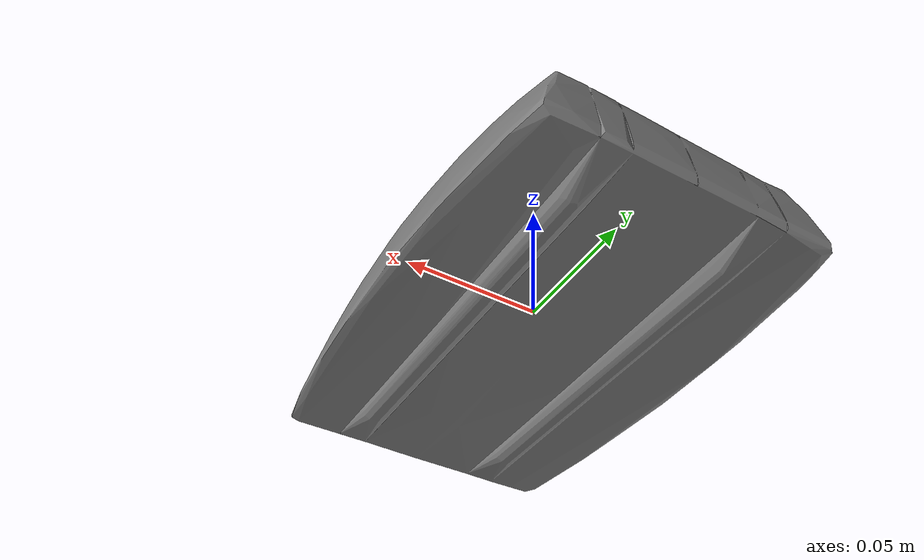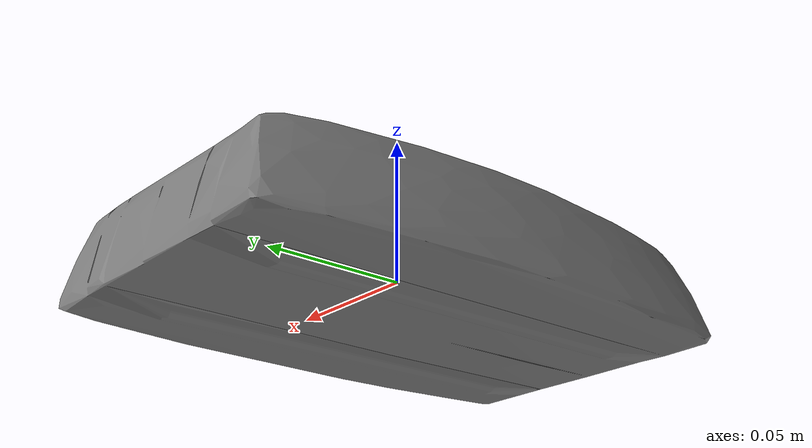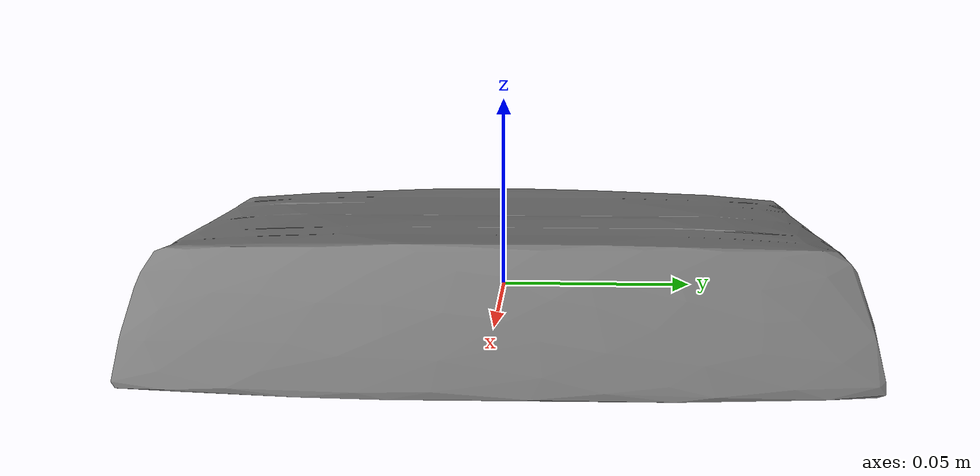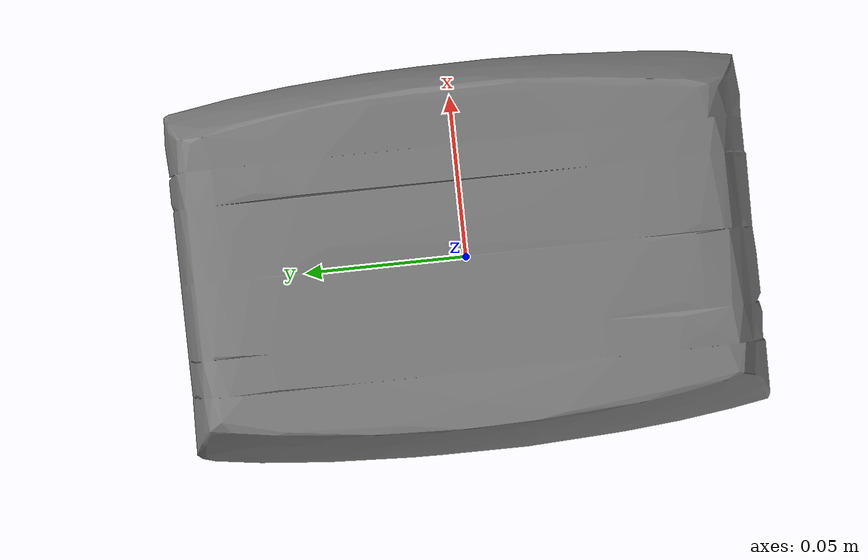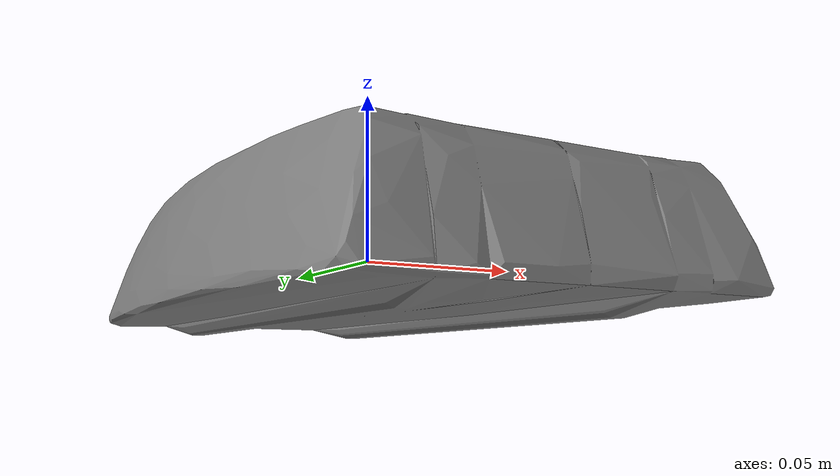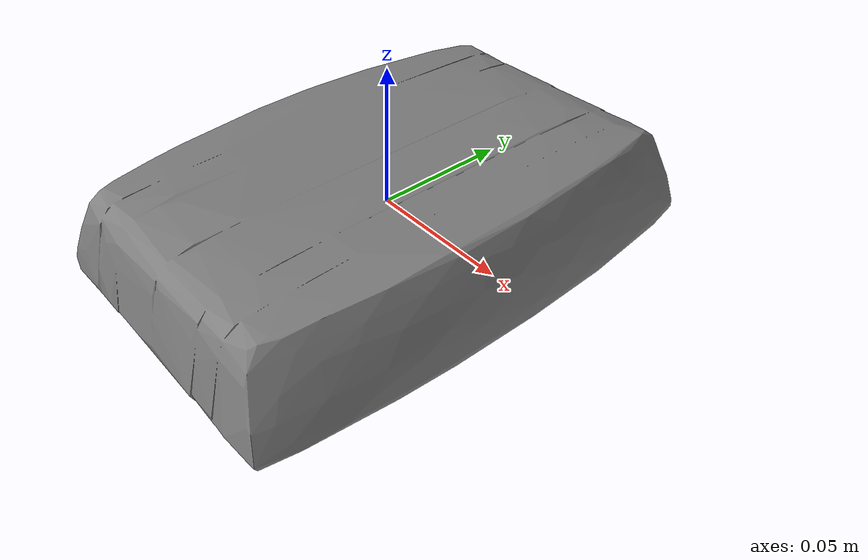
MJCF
<mujoco model="hard_drive_Seagate_3TB_Central_shared_storage_M">
  <default>
    <default class="visual">
      <geom group="2" type="mesh" contype="0" conaffinity="0" />
    </default>
    <default class="collision">
      <geom group="3" type="mesh" />
    </default>
  </default>
  <asset>
    <mesh file="hard_drive_Seagate_3TB_Central_shared_storage_M.stl" />
    <mesh file="hard_drive_Seagate_3TB_Central_shared_storage_M_collision_0.stl" />
    <mesh file="hard_drive_Seagate_3TB_Central_shared_storage_M_collision_1.stl" />
    <mesh file="hard_drive_Seagate_3TB_Central_shared_storage_M_collision_2.stl" />
    <mesh file="hard_drive_Seagate_3TB_Central_shared_storage_M_collision_3.stl" />
    <mesh file="hard_drive_Seagate_3TB_Central_shared_storage_M_collision_4.stl" />
    <mesh file="hard_drive_Seagate_3TB_Central_shared_storage_M_collision_5.stl" />
    <mesh file="hard_drive_Seagate_3TB_Central_shared_storage_M_collision_6.stl" />
    <mesh file="hard_drive_Seagate_3TB_Central_shared_storage_M_collision_7.stl" />
    <mesh file="hard_drive_Seagate_3TB_Central_shared_storage_M_collision_8.stl" />
    <mesh file="hard_drive_Seagate_3TB_Central_shared_storage_M_collision_9.stl" />
    <mesh file="hard_drive_Seagate_3TB_Central_shared_storage_M_collision_10.stl" />
    <mesh file="hard_drive_Seagate_3TB_Central_shared_storage_M_collision_11.stl" />
    <mesh file="hard_drive_Seagate_3TB_Central_shared_storage_M_collision_12.stl" />
    <mesh file="hard_drive_Seagate_3TB_Central_shared_storage_M_collision_13.stl" />
    <mesh file="hard_drive_Seagate_3TB_Central_shared_storage_M_collision_14.stl" />
    <mesh file="hard_drive_Seagate_3TB_Central_shared_storage_M_collision_15.stl" />
  </asset>
  <worldbody>
    <body name="hard_drive_Seagate_3TB_Central_shared_storage_M">
      <geom mesh="hard_drive_Seagate_3TB_Central_shared_storage_M" class="visual" />
      <geom mesh="hard_drive_Seagate_3TB_Central_shared_storage_M_collision_0" class="collision" />
      <geom mesh="hard_drive_Seagate_3TB_Central_shared_storage_M_collision_1" class="collision" />
      <geom mesh="hard_drive_Seagate_3TB_Central_shared_storage_M_collision_2" class="collision" />
      <geom mesh="hard_drive_Seagate_3TB_Central_shared_storage_M_collision_3" class="collision" />
      <geom mesh="hard_drive_Seagate_3TB_Central_shared_storage_M_collision_4" class="collision" />
      <geom mesh="hard_drive_Seagate_3TB_Central_shared_storage_M_collision_5" class="collision" />
      <geom mesh="hard_drive_Seagate_3TB_Central_shared_storage_M_collision_6" class="collision" />
      <geom mesh="hard_drive_Seagate_3TB_Central_shared_storage_M_collision_7" class="collision" />
      <geom mesh="hard_drive_Seagate_3TB_Central_shared_storage_M_collision_8" class="collision" />
      <geom mesh="hard_drive_Seagate_3TB_Central_shared_storage_M_collision_9" class="collision" />
      <geom mesh="hard_drive_Seagate_3TB_Central_shared_storage_M_collision_10" class="collision" />
      <geom mesh="hard_drive_Seagate_3TB_Central_shared_storage_M_collision_11" class="collision" />
      <geom mesh="hard_drive_Seagate_3TB_Central_shared_storage_M_collision_12" class="collision" />
      <geom mesh="hard_drive_Seagate_3TB_Central_shared_storage_M_collision_13" class="collision" />
      <geom mesh="hard_drive_Seagate_3TB_Central_shared_storage_M_collision_14" class="collision" />
      <geom mesh="hard_drive_Seagate_3TB_Central_shared_storage_M_collision_15" class="collision" />
    </body>
  </worldbody>
</mujoco>
